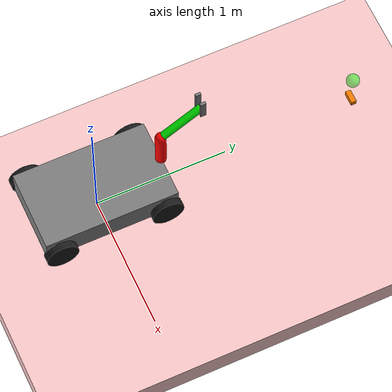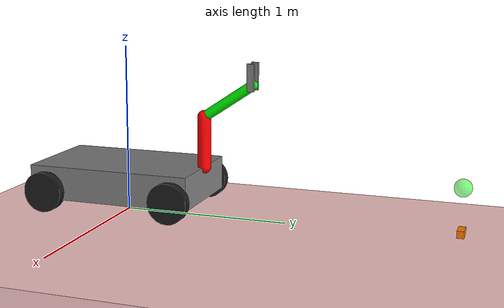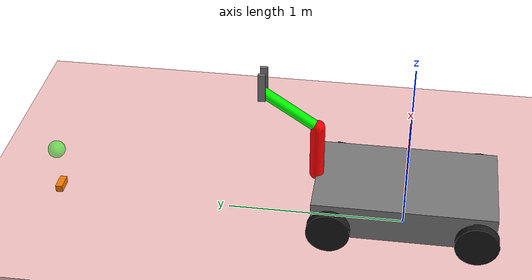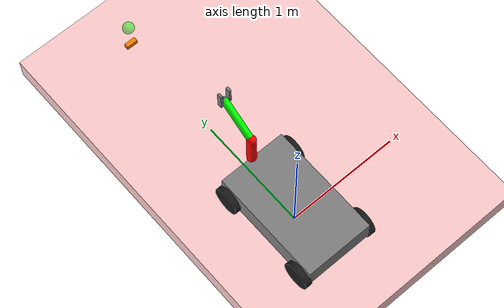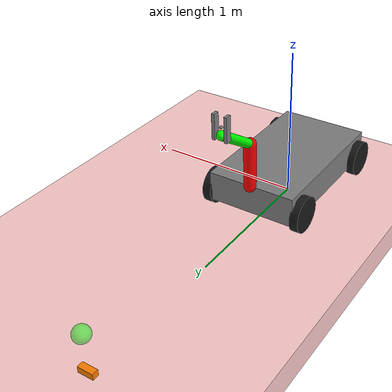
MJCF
<mujoco model="robot_sprint_unified">
    <option timestep="0.002" gravity="0 0 -9.81" solver="PGS" iterations="50"/>

    <worldbody>
        <geom name="table" type="box" size="5 5 0.1" pos="0 0 -0.1"
              friction="1 0.05 0.01" rgba="1.0 0.8 0.8 1"/>

        <light pos="0 0 5"/>

        <site name="target" pos="0 2 0.3" size="0.05" rgba="0 1 0 0.5"/>

        <body name="eraser" pos="0 2 0.05">
            <freejoint/>
            <geom type="box" size="0.05 0.02 0.02" mass="0.07"
                  rgba="1 0.5 0 1" friction="1 0.05 0.01"/>
        </body>

        <body name="chassis" pos="0 0 0.2">
            <freejoint name = "root"/>
            <geom type="box" size="0.3 0.5 0.1" mass="10.0"
                  rgba="0.5 0.5 0.5 1"/>

            <body name = "fr" pos = "0.32 0.4 -0.05">
                <joint name = "fr_wheel" type = "hinge" axis = "1 0 0" damping = "0.1" armature = "0.01"/>
                <geom type = "cylinder" size = "0.12 0.03" euler="0 90 0" mass = "0.4" friction="1.5 0.1 0.02" rgba = "0.1 0.1 0.1 1"/>
            </body>

            <body name = "fl" pos = "0.32 -0.4 -0.05">
                <joint name = "fl_wheel" type = "hinge" axis = "1 0 0" damping = "0.1" armature = "0.01"/>
                <geom type = "cylinder" size = "0.12 0.03" euler="0 90 0" mass = "0.4" friction="1.5 0.1 0.02" rgba = "0.1 0.1 0.1 1"/>
            </body>

            <body name = "br" pos = "-0.32 0.4 -0.05">
                <joint name = "br_wheel" type = "hinge" axis = "1 0 0" damping = "0.1" armature = "0.01"/>
                <geom type = "cylinder" size = "0.12 0.03" euler="0 90 0" mass = "0.4" friction="1.5 0.1 0.02" rgba = "0.1 0.1 0.1 1"/>
            </body>

            <body name = "bl" pos = "-0.32 -0.4 -0.05">
                <joint name = "bl_wheel" type = "hinge" axis = "1 0 0" damping = "0.1" armature = "0.01"/>
                <geom type = "cylinder" size = "0.12 0.03" euler="0 90 0" mass = "0.4" friction="1.5 0.1 0.02" rgba = "0.1 0.1 0.1 1"/>
            </body>

            <body name="upper_arm" pos="0 0.5 0.1">
                <joint name="shoulder" type="hinge" damping="0.1"
                       armature="0.01" axis="1 0 0" range="0 3.14"/>
                <geom type="capsule" size="0.04"
                      fromto="0 0 0 0 0 0.3" mass="1.0" rgba="1 0 0 1"/>

                <body name="forearm" pos="0 0 0.3">
                    <joint name="elbow" type="hinge" damping="0.1"
                           armature="0.01" axis="0 1 0" range="-1.57 1.57"/>
                    <geom type="capsule" size="0.03" fromto="0 0 0 0 0.3 0.2" mass="0.30" rgba="0 1 0 1"/>

                    <body name="hand" pos="0 0.3 0.2">

                        <site name="pinch_point" pos="0 0 0.05" size="0.01"/>
                        <body name="finger_l" pos="0.04 0 0.05">
                            <joint name="f_l" type="hinge" damping="1.0"
                                   armature="0.01" axis="0 -1 0" range="0 1.57"/>
                            <geom type="box" size="0.01 0.02 0.08" mass="0.02"
                                  rgba="0.5 0.5 0.5 1"/>
                        </body>

                        <body name="finger_r" pos="-0.04 0 0.05">
                            <joint name="f_r" type="hinge" damping="1.0"
                                   armature="0.01" axis="0 1 0" range="0 1.57"/>
                            <geom type="box" size="0.01 0.02 0.08" mass="0.02"
                                  rgba="0.5 0.5 0.5 1"/>
                        </body>
                    </body>
                </body>
            </body>
        </body>
    </worldbody>

    <actuator>
        <position joint="shoulder" gear="2.3" kp="15" kv="3"/>
        <position joint="elbow"    gear="2.3" kp="15" kv="3"/>
        <position joint="f_l"      gear="1.2" kp="8"  kv="2"/>
        <position joint="f_r"      gear="1.2" kp="8"  kv="2"/>
        <velocity joint = "fr_wheel" gear = "0.5" kv = "1"/>
        <velocity joint = "fl_wheel" gear = "0.5" kv = "1"/>
        <velocity joint = "br_wheel" gear = "0.5" kv = "1"/>
        <velocity joint = "bl_wheel" gear = "0.5" kv = "1"/>
    </actuator>
</mujoco>
